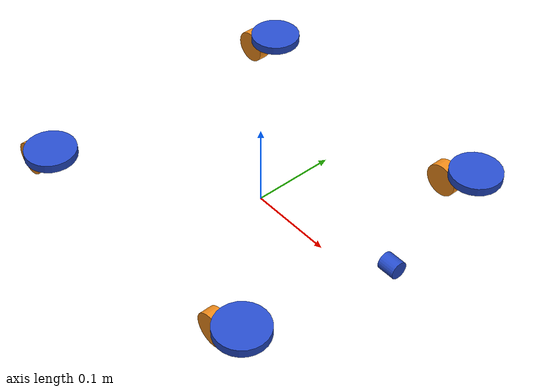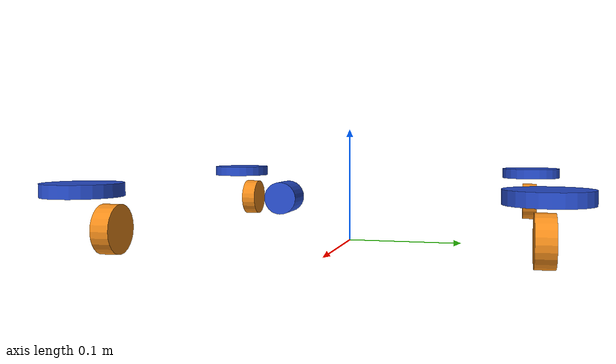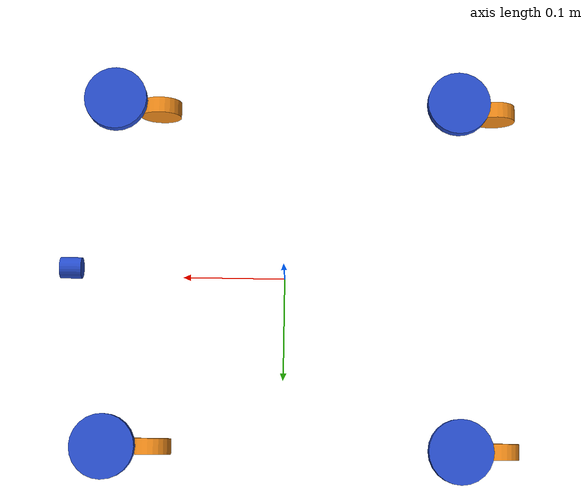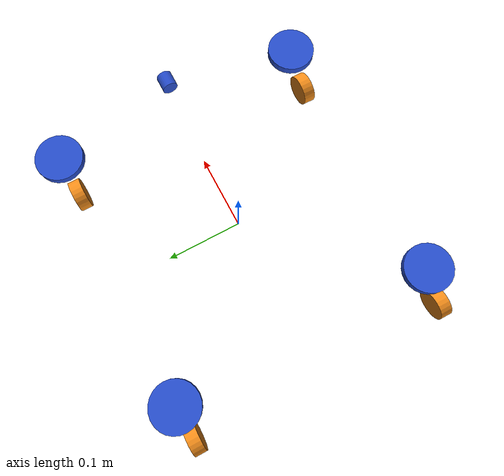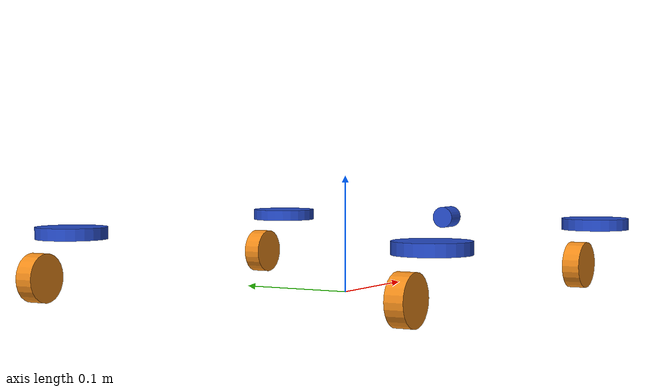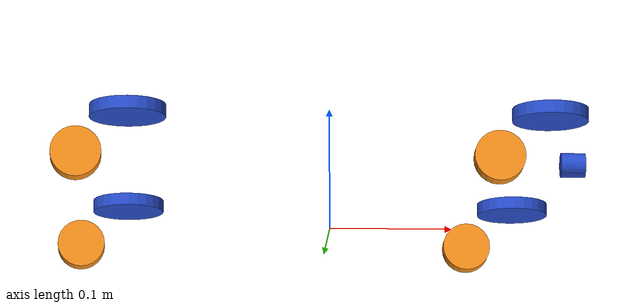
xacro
<?xml version="1.0"?>

<robot xmlns:xacro="http://ros.org/wiki/xacro" name="dyno_active_caster" >

  <xacro:include filename="../urdf/materials/materials.xacro"/>
  <xacro:include filename="../urdf/utils.urdf.xacro"/>
  <xacro:include filename="../urdf/plugins.gazebo.xacro"/>

  <!-- Set up definitions of parts of robot body -->
  <xacro:include filename="../urdf/base/active_caster_base.urdf.xacro"/>

  <!-- Use macros to define the actual robot -->
  <base/>

</robot>

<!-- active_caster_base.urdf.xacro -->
<!-- Dyno active caster base -->

<robot xmlns:xacro="http://ros.org/wiki/xacro">

  <xacro:include filename="active_caster_base.gazebo.xacro"/>
  <xacro:include filename="../wheels/active_caster/active_caster.urdf.xacro"/>

  <!-- Active caster characteristics -->
  <xacro:property name="wheel_separation" value="0.33"/>
  <xacro:property name="caster_height" value="0.055"/>

  <!-- Base -->
  <xacro:macro name="base">
    <link name="base_link">

      <visual>
        <origin xyz="0.2 0 0" rpy="0 ${M_PI/2} 0"/>
        <geometry>
          <cylinder length="0.02" radius="0.01"/>
        </geometry>
      </visual>

      <collision>
        <origin xyz="0 0 0.2" rpy="0 0 0"/>
        <geometry>
          <cylinder length="0.1" radius="0.2"/>
        </geometry>
      </collision>

      <inertial>
        <origin xyz="0 0 0" rpy="0 0 0"/>
        <mass value="10.0"/>
        <box_inertia m="10.0" x="0.3" y="0.3" z="0.1"/>
      </inertial>

    </link>

    <!-- Base footprint -->
    <link name="base_footprint"/>

    <joint name="base_footprint_joint" type="fixed">
      <origin xyz="0 0 ${caster_height}" rpy="0 0 0"/>
      <parent link="base_footprint"/>
      <child link="base_link"/>
    </joint>

    <!-- Macros -->

    <!-- Triangle -->

    <!-- Square -->
    <active_caster name="fl_caster" parent="base_link" x_offset="${wheel_separation/2}" y_offset="${wheel_separation/2}"/>
    <active_caster name="fr_caster" parent="base_link" x_offset="${wheel_separation/2}" y_offset="${-wheel_separation/2}"/>
    <active_caster name="rl_caster" parent="base_link" x_offset="${-wheel_separation/2}" y_offset="${wheel_separation/2}"/>
    <active_caster name="rr_caster" parent="base_link" x_offset="${-wheel_separation/2}" y_offset="${-wheel_separation/2}"/>

    <!-- Gazebo -->
    <base_gazebo/>

  </xacro:macro>

</robot>

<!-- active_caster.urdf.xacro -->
<robot xmlns:xacro="http://ros.org/wiki/xacro">

  <xacro:include filename="active_caster.gazebo.xacro"/>

  <xacro:macro name="active_caster" params="name x_offset y_offset parent">

    <xacro:property name="wheel_radius" value="0.02"/>
    <xacro:property name="wheel_width" value="0.015"/>
    <xacro:property name="wheel_mass" value="0.1"/>

    <xacro:property name="x_yoke_offset" value="-0.04"/>
    <xacro:property name="z_yoke_offset" value="-0.034"/>

    <!-- Mount -->
    <link name="${name}_mount_link">
      <collision>
        <origin xyz="0 0 0" rpy="0 0 0"/>
        <geometry>
          <cylinder length="0.01" radius="0.01"/>
        </geometry>
      </collision>

      <inertial>
        <origin xyz="0 0 0" rpy="0 0 0"/>
        <mass value="0.1"/>
        <box_inertia m="0.1" x="0.1" y="0.1" z="0.1"/>
      </inertial>

    </link>

    <joint name="${name}_mount_joint" type="fixed">
      <origin xyz="${x_offset} ${y_offset} 0" rpy="0 0 0"/>
      <parent link="${parent}"/>
      <child link="${name}_mount_link"/>
    </joint>

    <!-- Steer -->
    <link name="${name}_steer_link">
      <visual>
        <origin xyz="0 0 0" rpy="0 0 0"/>
        <geometry>
          <cylinder length="0.01" radius="0.03"/>
        </geometry>
        <material name="blue"/>
      </visual>

      <collision>
        <origin xyz="0 0 0" rpy="0 0 0"/>
        <geometry>
          <cylinder length="0.01" radius="0.01"/>
        </geometry>
      </collision>

      <inertial>
        <origin xyz="0 0 0" rpy="0 0 0"/>
        <mass value="0.1"/>
        <box_inertia m="0.1" x="0.1" y="0.1" z="0.1"/>
      </inertial>
    </link>

    <joint name="${name}_steer_joint" type="continuous">
      <parent link="${name}_mount_link"/>
      <child link="${name}_steer_link"/>
      <axis xyz="0 0 1"/>
      <limit effort="10000" velocity="10000"/>
    </joint>

    <!-- Wheel -->

    <link name="${name}_wheel_link">
      <visual>
        <origin xyz="0 0 0" rpy="0 0 0"/>
        <geometry>
          <cylinder length="${wheel_width}" radius="${wheel_radius}"/>
        </geometry>
        <material name="orange"/>
      </visual>

      <collision>
        <origin xyz="0 0 0" rpy="0 0 0"/>
        <geometry>
          <cylinder length="${wheel_width}" radius="${wheel_radius}"/>
        </geometry>
        <material name="orange"/>
      </collision>

      <inertial>
        <origin xyz="0 0 0" rpy="0 0 0"/>
        <mass value="0.5"/>
        <cylinder_inertia m="0.5" r="${wheel_radius}" h="${wheel_width}"/>
      </inertial>

    </link>

    <joint name="${name}_wheel_joint" type="continuous">
      <origin xyz="${x_yoke_offset} 0 ${z_yoke_offset}" rpy="${M_PI/2} 0 0"/>
      <parent link="${name}_steer_link"/>
      <child link="${name}_wheel_link"/>
      <axis xyz="0 0 1"/>
      <limit effort="10000" velocity="10000"/>
    </joint>

    <!-- Transmission -->

    <xacro:simple_transmission name="${name}_steer_joint" interface="EffortJointInterface"/>
    <xacro:simple_transmission name="${name}_wheel_joint" interface="EffortJointInterface"/>

    <!-- Gazebo -->
    <wheel_gazebo name="${name}_wheel_link"/>

  </xacro:macro>
</robot>
